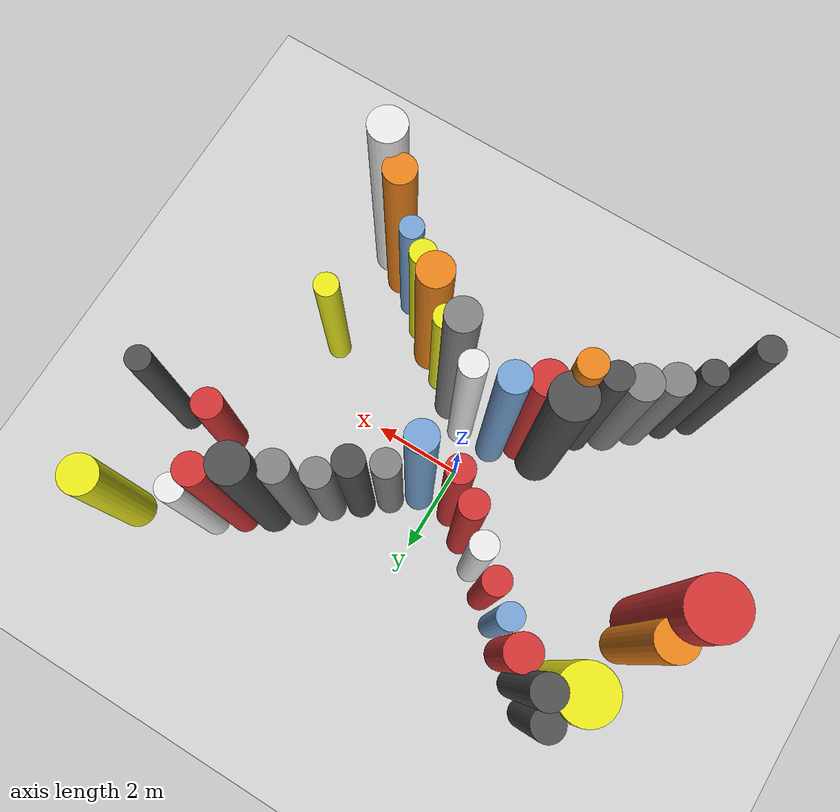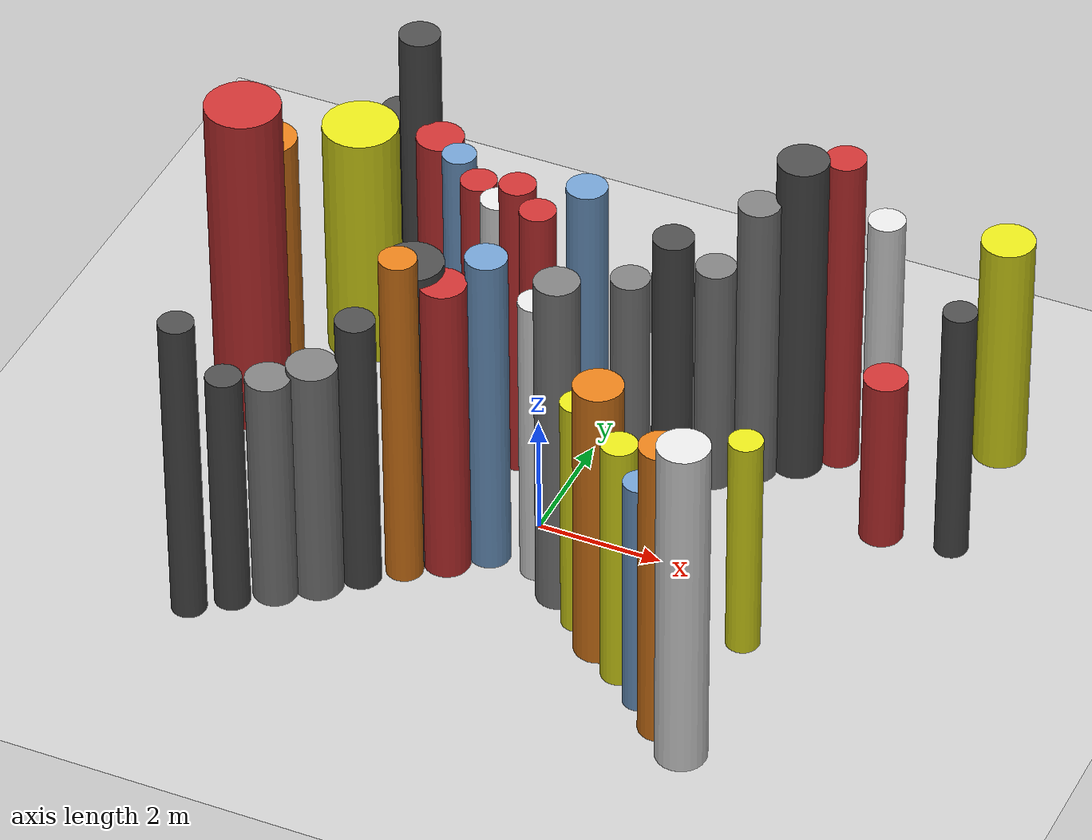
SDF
<?xml version='1.0'?>
<sdf version='1.6'>
  <world name='routeA_rl_v1__dense_recovery__rl_train__bottleneck_corridor__000069'>
    <!-- Sun light -->
    <light name='sun' type='directional'>
      <cast_shadows>1</cast_shadows>
      <pose>0 0 10 0 0 0</pose>
      <diffuse>0.8 0.8 0.8 1</diffuse>
      <specular>0.2 0.2 0.2 1</specular>
      <attenuation>
        <range>1000</range>
        <constant>0.9</constant>
        <linear>0.01</linear>
        <quadratic>0.001</quadratic>
      </attenuation>
      <direction>-0.5 0.1 -0.9</direction>
    </light>

    <!-- Ground plane -->
    <model name='ground_plane'>
      <static>1</static>
      <link name='link'>
        <collision name='collision'>
          <geometry>
            <plane>
              <normal>0 0 1</normal>
              <size>100 100</size>
            </plane>
          </geometry>
          <surface>
            <contact>
              <collide_bitmask>65535</collide_bitmask>
              <ode/>
            </contact>
            <friction>
              <ode>
                <mu>100</mu>
                <mu2>50</mu2>
              </ode>
              <torsional><ode/></torsional>
            </friction>
            <bounce/>
          </surface>
          <max_contacts>10</max_contacts>
        </collision>
        <visual name='visual'>
          <cast_shadows>0</cast_shadows>
          <geometry>
            <plane>
              <normal>0 0 1</normal>
              <size>100 100</size>
            </plane>
          </geometry>
          <material>
            <script>
              <uri>file://media/materials/scripts/gazebo.material</uri>
              <n>Gazebo/Grey</n>
            </script>
          </material>
        </visual>
      </link>
    </model>

    <!-- Environment -->
    <magnetic_field>6e-06 2.3e-05 -4.2e-05</magnetic_field>
    <atmosphere type='adiabatic'/>
    <physics name='default_physics' default='0' type='ode'>
      <gravity>0 0 -9.8</gravity>
      <max_step_size>0.004</max_step_size>
      <real_time_factor>1</real_time_factor>
      <real_time_update_rate>250</real_time_update_rate>
    </physics>
    <scene>
      <ambient>0.4 0.4 0.4 1</ambient>
      <background>0.7 0.7 0.7 1</background>
      <shadows>1</shadows>
    </scene>
    <wind/>
    <spherical_coordinates>
      <surface_model>EARTH_WGS84</surface_model>
      <latitude_deg>0</latitude_deg>
      <longitude_deg>0</longitude_deg>
      <elevation>0</elevation>
      <heading_deg>0</heading_deg>
    </spherical_coordinates>

    <!-- ============ OBSTACLES (40) ============ -->
    <model name='funnel_l_0'>
      <static>1</static>
      <link name='link'>
        <visual name='visual'>
          <geometry>
            <cylinder>
              <radius>0.2718</radius>
              <length>5.4265</length>
            </cylinder>
          </geometry>
          <material>
            <script>
              <n>Gazebo/DarkGrey</n>
              <uri>file://media/materials/scripts/gazebo.material</uri>
            </script>
            <ambient>0.3 0.3 0.3 1</ambient>
          </material>
        </visual>
        <collision name='collision'>
          <geometry>
            <cylinder>
              <radius>0.2718</radius>
              <length>5.4265</length>
            </cylinder>
          </geometry>
          <max_contacts>10</max_contacts>
          <surface>
            <contact><ode/></contact>
            <bounce/>
            <friction>
              <ode><mu>1</mu><mu2>1</mu2></ode>
              <torsional><ode/></torsional>
            </friction>
          </surface>
        </collision>
      </link>
      <pose>-4.0000 -3.8000 2.7132 0 0 0.0000</pose>
    </model>

    <model name='funnel_r_0'>
      <static>1</static>
      <link name='link'>
        <visual name='visual'>
          <geometry>
            <cylinder>
              <radius>0.3320</radius>
              <length>4.0389</length>
            </cylinder>
          </geometry>
          <material>
            <script>
              <n>Gazebo/DarkGrey</n>
              <uri>file://media/materials/scripts/gazebo.material</uri>
            </script>
            <ambient>0.3 0.3 0.3 1</ambient>
          </material>
        </visual>
        <collision name='collision'>
          <geometry>
            <cylinder>
              <radius>0.3320</radius>
              <length>4.0389</length>
            </cylinder>
          </geometry>
          <max_contacts>10</max_contacts>
          <surface>
            <contact><ode/></contact>
            <bounce/>
            <friction>
              <ode><mu>1</mu><mu2>1</mu2></ode>
              <torsional><ode/></torsional>
            </friction>
          </surface>
        </collision>
      </link>
      <pose>-4.0000 3.8000 2.0195 0 0 0.0000</pose>
    </model>

    <model name='funnel_l_1'>
      <static>1</static>
      <link name='link'>
        <visual name='visual'>
          <geometry>
            <cylinder>
              <radius>0.2744</radius>
              <length>4.2937</length>
            </cylinder>
          </geometry>
          <material>
            <script>
              <n>Gazebo/DarkGrey</n>
              <uri>file://media/materials/scripts/gazebo.material</uri>
            </script>
            <ambient>0.3 0.3 0.3 1</ambient>
          </material>
        </visual>
        <collision name='collision'>
          <geometry>
            <cylinder>
              <radius>0.2744</radius>
              <length>4.2937</length>
            </cylinder>
          </geometry>
          <max_contacts>10</max_contacts>
          <surface>
            <contact><ode/></contact>
            <bounce/>
            <friction>
              <ode><mu>1</mu><mu2>1</mu2></ode>
              <torsional><ode/></torsional>
            </friction>
          </surface>
        </collision>
      </link>
      <pose>-3.4857 -3.3857 2.1469 0 0 0.0000</pose>
    </model>

    <model name='funnel_r_1'>
      <static>1</static>
      <link name='link'>
        <visual name='visual'>
          <geometry>
            <cylinder>
              <radius>0.3218</radius>
              <length>5.8921</length>
            </cylinder>
          </geometry>
          <material>
            <script>
              <n>Gazebo/DarkGrey</n>
              <uri>file://media/materials/scripts/gazebo.material</uri>
            </script>
            <ambient>0.3 0.3 0.3 1</ambient>
          </material>
        </visual>
        <collision name='collision'>
          <geometry>
            <cylinder>
              <radius>0.3218</radius>
              <length>5.8921</length>
            </cylinder>
          </geometry>
          <max_contacts>10</max_contacts>
          <surface>
            <contact><ode/></contact>
            <bounce/>
            <friction>
              <ode><mu>1</mu><mu2>1</mu2></ode>
              <torsional><ode/></torsional>
            </friction>
          </surface>
        </collision>
      </link>
      <pose>-3.4857 3.3857 2.9461 0 0 0.0000</pose>
    </model>

    <model name='funnel_l_2'>
      <static>1</static>
      <link name='link'>
        <visual name='visual'>
          <geometry>
            <cylinder>
              <radius>0.3454</radius>
              <length>4.1374</length>
            </cylinder>
          </geometry>
          <material>
            <script>
              <n>Gazebo/Grey</n>
              <uri>file://media/materials/scripts/gazebo.material</uri>
            </script>
            <ambient>0.5 0.5 0.5 1</ambient>
          </material>
        </visual>
        <collision name='collision'>
          <geometry>
            <cylinder>
              <radius>0.3454</radius>
              <length>4.1374</length>
            </cylinder>
          </geometry>
          <max_contacts>10</max_contacts>
          <surface>
            <contact><ode/></contact>
            <bounce/>
            <friction>
              <ode><mu>1</mu><mu2>1</mu2></ode>
              <torsional><ode/></torsional>
            </friction>
          </surface>
        </collision>
      </link>
      <pose>-2.9714 -2.9714 2.0687 0 0 0.0000</pose>
    </model>

    <model name='funnel_r_2'>
      <static>1</static>
      <link name='link'>
        <visual name='visual'>
          <geometry>
            <cylinder>
              <radius>0.3732</radius>
              <length>4.4045</length>
            </cylinder>
          </geometry>
          <material>
            <script>
              <n>Gazebo/Red</n>
              <uri>file://media/materials/scripts/gazebo.material</uri>
            </script>
            <ambient>0.8 0.2 0.2 1</ambient>
          </material>
        </visual>
        <collision name='collision'>
          <geometry>
            <cylinder>
              <radius>0.3732</radius>
              <length>4.4045</length>
            </cylinder>
          </geometry>
          <max_contacts>10</max_contacts>
          <surface>
            <contact><ode/></contact>
            <bounce/>
            <friction>
              <ode><mu>1</mu><mu2>1</mu2></ode>
              <torsional><ode/></torsional>
            </friction>
          </surface>
        </collision>
      </link>
      <pose>-2.9714 2.9714 2.2022 0 0 0.0000</pose>
    </model>

    <model name='funnel_l_3'>
      <static>1</static>
      <link name='link'>
        <visual name='visual'>
          <geometry>
            <cylinder>
              <radius>0.3858</radius>
              <length>4.2300</length>
            </cylinder>
          </geometry>
          <material>
            <script>
              <n>Gazebo/Grey</n>
              <uri>file://media/materials/scripts/gazebo.material</uri>
            </script>
            <ambient>0.5 0.5 0.5 1</ambient>
          </material>
        </visual>
        <collision name='collision'>
          <geometry>
            <cylinder>
              <radius>0.3858</radius>
              <length>4.2300</length>
            </cylinder>
          </geometry>
          <max_contacts>10</max_contacts>
          <surface>
            <contact><ode/></contact>
            <bounce/>
            <friction>
              <ode><mu>1</mu><mu2>1</mu2></ode>
              <torsional><ode/></torsional>
            </friction>
          </surface>
        </collision>
      </link>
      <pose>-2.4571 -2.5571 2.1150 0 0 0.0000</pose>
    </model>

    <model name='funnel_r_3'>
      <static>1</static>
      <link name='link'>
        <visual name='visual'>
          <geometry>
            <cylinder>
              <radius>0.2668</radius>
              <length>4.5236</length>
            </cylinder>
          </geometry>
          <material>
            <script>
              <n>Gazebo/Blue</n>
              <uri>file://media/materials/scripts/gazebo.material</uri>
            </script>
            <ambient>0.447 0.624 0.812 1</ambient>
          </material>
        </visual>
        <collision name='collision'>
          <geometry>
            <cylinder>
              <radius>0.2668</radius>
              <length>4.5236</length>
            </cylinder>
          </geometry>
          <max_contacts>10</max_contacts>
          <surface>
            <contact><ode/></contact>
            <bounce/>
            <friction>
              <ode><mu>1</mu><mu2>1</mu2></ode>
              <torsional><ode/></torsional>
            </friction>
          </surface>
        </collision>
      </link>
      <pose>-2.4571 2.5571 2.2618 0 0 0.0000</pose>
    </model>

    <model name='funnel_l_4'>
      <static>1</static>
      <link name='link'>
        <visual name='visual'>
          <geometry>
            <cylinder>
              <radius>0.3014</radius>
              <length>4.9297</length>
            </cylinder>
          </geometry>
          <material>
            <script>
              <n>Gazebo/DarkGrey</n>
              <uri>file://media/materials/scripts/gazebo.material</uri>
            </script>
            <ambient>0.3 0.3 0.3 1</ambient>
          </material>
        </visual>
        <collision name='collision'>
          <geometry>
            <cylinder>
              <radius>0.3014</radius>
              <length>4.9297</length>
            </cylinder>
          </geometry>
          <max_contacts>10</max_contacts>
          <surface>
            <contact><ode/></contact>
            <bounce/>
            <friction>
              <ode><mu>1</mu><mu2>1</mu2></ode>
              <torsional><ode/></torsional>
            </friction>
          </surface>
        </collision>
      </link>
      <pose>-1.9429 -2.1429 2.4649 0 0 0.0000</pose>
    </model>

    <model name='funnel_r_4'>
      <static>1</static>
      <link name='link'>
        <visual name='visual'>
          <geometry>
            <cylinder>
              <radius>0.2849</radius>
              <length>4.4782</length>
            </cylinder>
          </geometry>
          <material>
            <script>
              <n>Gazebo/Red</n>
              <uri>file://media/materials/scripts/gazebo.material</uri>
            </script>
            <ambient>0.8 0.2 0.2 1</ambient>
          </material>
        </visual>
        <collision name='collision'>
          <geometry>
            <cylinder>
              <radius>0.2849</radius>
              <length>4.4782</length>
            </cylinder>
          </geometry>
          <max_contacts>10</max_contacts>
          <surface>
            <contact><ode/></contact>
            <bounce/>
            <friction>
              <ode><mu>1</mu><mu2>1</mu2></ode>
              <torsional><ode/></torsional>
            </friction>
          </surface>
        </collision>
      </link>
      <pose>-1.9429 2.1429 2.2391 0 0 0.0000</pose>
    </model>

    <model name='funnel_l_5'>
      <static>1</static>
      <link name='link'>
        <visual name='visual'>
          <geometry>
            <cylinder>
              <radius>0.2882</radius>
              <length>5.9430</length>
            </cylinder>
          </geometry>
          <material>
            <script>
              <n>Gazebo/Orange</n>
              <uri>file://media/materials/scripts/gazebo.material</uri>
            </script>
            <ambient>0.9 0.5 0.1 1</ambient>
          </material>
        </visual>
        <collision name='collision'>
          <geometry>
            <cylinder>
              <radius>0.2882</radius>
              <length>5.9430</length>
            </cylinder>
          </geometry>
          <max_contacts>10</max_contacts>
          <surface>
            <contact><ode/></contact>
            <bounce/>
            <friction>
              <ode><mu>1</mu><mu2>1</mu2></ode>
              <torsional><ode/></torsional>
            </friction>
          </surface>
        </collision>
      </link>
      <pose>-1.4286 -1.7286 2.9715 0 0 0.0000</pose>
    </model>

    <model name='funnel_r_5'>
      <static>1</static>
      <link name='link'>
        <visual name='visual'>
          <geometry>
            <cylinder>
              <radius>0.2801</radius>
              <length>4.5776</length>
            </cylinder>
          </geometry>
          <material>
            <script>
              <n>Gazebo/White</n>
              <uri>file://media/materials/scripts/gazebo.material</uri>
            </script>
            <ambient>0.9 0.9 0.9 1</ambient>
          </material>
        </visual>
        <collision name='collision'>
          <geometry>
            <cylinder>
              <radius>0.2801</radius>
              <length>4.5776</length>
            </cylinder>
          </geometry>
          <max_contacts>10</max_contacts>
          <surface>
            <contact><ode/></contact>
            <bounce/>
            <friction>
              <ode><mu>1</mu><mu2>1</mu2></ode>
              <torsional><ode/></torsional>
            </friction>
          </surface>
        </collision>
      </link>
      <pose>-1.4286 1.7286 2.2888 0 0 0.0000</pose>
    </model>

    <model name='funnel_l_6'>
      <static>1</static>
      <link name='link'>
        <visual name='visual'>
          <geometry>
            <cylinder>
              <radius>0.3624</radius>
              <length>5.3469</length>
            </cylinder>
          </geometry>
          <material>
            <script>
              <n>Gazebo/Red</n>
              <uri>file://media/materials/scripts/gazebo.material</uri>
            </script>
            <ambient>0.8 0.2 0.2 1</ambient>
          </material>
        </visual>
        <collision name='collision'>
          <geometry>
            <cylinder>
              <radius>0.3624</radius>
              <length>5.3469</length>
            </cylinder>
          </geometry>
          <max_contacts>10</max_contacts>
          <surface>
            <contact><ode/></contact>
            <bounce/>
            <friction>
              <ode><mu>1</mu><mu2>1</mu2></ode>
              <torsional><ode/></torsional>
            </friction>
          </surface>
        </collision>
      </link>
      <pose>-0.9143 -1.3143 2.6734 0 0 0.0000</pose>
    </model>

    <model name='funnel_r_6'>
      <static>1</static>
      <link name='link'>
        <visual name='visual'>
          <geometry>
            <cylinder>
              <radius>0.2842</radius>
              <length>5.3134</length>
            </cylinder>
          </geometry>
          <material>
            <script>
              <n>Gazebo/Red</n>
              <uri>file://media/materials/scripts/gazebo.material</uri>
            </script>
            <ambient>0.8 0.2 0.2 1</ambient>
          </material>
        </visual>
        <collision name='collision'>
          <geometry>
            <cylinder>
              <radius>0.2842</radius>
              <length>5.3134</length>
            </cylinder>
          </geometry>
          <max_contacts>10</max_contacts>
          <surface>
            <contact><ode/></contact>
            <bounce/>
            <friction>
              <ode><mu>1</mu><mu2>1</mu2></ode>
              <torsional><ode/></torsional>
            </friction>
          </surface>
        </collision>
      </link>
      <pose>-0.9143 1.3143 2.6567 0 0 0.0000</pose>
    </model>

    <model name='funnel_l_7'>
      <static>1</static>
      <link name='link'>
        <visual name='visual'>
          <geometry>
            <cylinder>
              <radius>0.3197</radius>
              <length>5.7007</length>
            </cylinder>
          </geometry>
          <material>
            <script>
              <n>Gazebo/Blue</n>
              <uri>file://media/materials/scripts/gazebo.material</uri>
            </script>
            <ambient>0.447 0.624 0.812 1</ambient>
          </material>
        </visual>
        <collision name='collision'>
          <geometry>
            <cylinder>
              <radius>0.3197</radius>
              <length>5.7007</length>
            </cylinder>
          </geometry>
          <max_contacts>10</max_contacts>
          <surface>
            <contact><ode/></contact>
            <bounce/>
            <friction>
              <ode><mu>1</mu><mu2>1</mu2></ode>
              <torsional><ode/></torsional>
            </friction>
          </surface>
        </collision>
      </link>
      <pose>-0.4000 -0.9000 2.8504 0 0 0.0000</pose>
    </model>

    <model name='funnel_r_7'>
      <static>1</static>
      <link name='link'>
        <visual name='visual'>
          <geometry>
            <cylinder>
              <radius>0.2814</radius>
              <length>5.2808</length>
            </cylinder>
          </geometry>
          <material>
            <script>
              <n>Gazebo/Red</n>
              <uri>file://media/materials/scripts/gazebo.material</uri>
            </script>
            <ambient>0.8 0.2 0.2 1</ambient>
          </material>
        </visual>
        <collision name='collision'>
          <geometry>
            <cylinder>
              <radius>0.2814</radius>
              <length>5.2808</length>
            </cylinder>
          </geometry>
          <max_contacts>10</max_contacts>
          <surface>
            <contact><ode/></contact>
            <bounce/>
            <friction>
              <ode><mu>1</mu><mu2>1</mu2></ode>
              <torsional><ode/></torsional>
            </friction>
          </surface>
        </collision>
      </link>
      <pose>-0.4000 0.9000 2.6404 0 0 0.0000</pose>
    </model>

    <model name='funnel_out_l_0'>
      <static>1</static>
      <link name='link'>
        <visual name='visual'>
          <geometry>
            <cylinder>
              <radius>0.2830</radius>
              <length>5.1470</length>
            </cylinder>
          </geometry>
          <material>
            <script>
              <n>Gazebo/White</n>
              <uri>file://media/materials/scripts/gazebo.material</uri>
            </script>
            <ambient>0.9 0.9 0.9 1</ambient>
          </material>
        </visual>
        <collision name='collision'>
          <geometry>
            <cylinder>
              <radius>0.2830</radius>
              <length>5.1470</length>
            </cylinder>
          </geometry>
          <max_contacts>10</max_contacts>
          <surface>
            <contact><ode/></contact>
            <bounce/>
            <friction>
              <ode><mu>1</mu><mu2>1</mu2></ode>
              <torsional><ode/></torsional>
            </friction>
          </surface>
        </collision>
      </link>
      <pose>0.4000 -0.9000 2.5735 0 0 0.0000</pose>
    </model>

    <model name='funnel_out_r_0'>
      <static>1</static>
      <link name='link'>
        <visual name='visual'>
          <geometry>
            <cylinder>
              <radius>0.3134</radius>
              <length>5.9748</length>
            </cylinder>
          </geometry>
          <material>
            <script>
              <n>Gazebo/Blue</n>
              <uri>file://media/materials/scripts/gazebo.material</uri>
            </script>
            <ambient>0.447 0.624 0.812 1</ambient>
          </material>
        </visual>
        <collision name='collision'>
          <geometry>
            <cylinder>
              <radius>0.3134</radius>
              <length>5.9748</length>
            </cylinder>
          </geometry>
          <max_contacts>10</max_contacts>
          <surface>
            <contact><ode/></contact>
            <bounce/>
            <friction>
              <ode><mu>1</mu><mu2>1</mu2></ode>
              <torsional><ode/></torsional>
            </friction>
          </surface>
        </collision>
      </link>
      <pose>0.4000 0.9000 2.9874 0 0 0.0000</pose>
    </model>

    <model name='funnel_out_l_1'>
      <static>1</static>
      <link name='link'>
        <visual name='visual'>
          <geometry>
            <cylinder>
              <radius>0.3453</radius>
              <length>5.9753</length>
            </cylinder>
          </geometry>
          <material>
            <script>
              <n>Gazebo/Grey</n>
              <uri>file://media/materials/scripts/gazebo.material</uri>
            </script>
            <ambient>0.5 0.5 0.5 1</ambient>
          </material>
        </visual>
        <collision name='collision'>
          <geometry>
            <cylinder>
              <radius>0.3453</radius>
              <length>5.9753</length>
            </cylinder>
          </geometry>
          <max_contacts>10</max_contacts>
          <surface>
            <contact><ode/></contact>
            <bounce/>
            <friction>
              <ode><mu>1</mu><mu2>1</mu2></ode>
              <torsional><ode/></torsional>
            </friction>
          </surface>
        </collision>
      </link>
      <pose>0.9143 -1.3143 2.9877 0 0 0.0000</pose>
    </model>

    <model name='funnel_out_r_1'>
      <static>1</static>
      <link name='link'>
        <visual name='visual'>
          <geometry>
            <cylinder>
              <radius>0.3038</radius>
              <length>4.1363</length>
            </cylinder>
          </geometry>
          <material>
            <script>
              <n>Gazebo/Grey</n>
              <uri>file://media/materials/scripts/gazebo.material</uri>
            </script>
            <ambient>0.5 0.5 0.5 1</ambient>
          </material>
        </visual>
        <collision name='collision'>
          <geometry>
            <cylinder>
              <radius>0.3038</radius>
              <length>4.1363</length>
            </cylinder>
          </geometry>
          <max_contacts>10</max_contacts>
          <surface>
            <contact><ode/></contact>
            <bounce/>
            <friction>
              <ode><mu>1</mu><mu2>1</mu2></ode>
              <torsional><ode/></torsional>
            </friction>
          </surface>
        </collision>
      </link>
      <pose>0.9143 1.3143 2.0681 0 0 0.0000</pose>
    </model>

    <model name='funnel_out_l_2'>
      <static>1</static>
      <link name='link'>
        <visual name='visual'>
          <geometry>
            <cylinder>
              <radius>0.2678</radius>
              <length>4.2107</length>
            </cylinder>
          </geometry>
          <material>
            <script>
              <n>Gazebo/Yellow</n>
              <uri>file://media/materials/scripts/gazebo.material</uri>
            </script>
            <ambient>0.9 0.9 0.1 1</ambient>
          </material>
        </visual>
        <collision name='collision'>
          <geometry>
            <cylinder>
              <radius>0.2678</radius>
              <length>4.2107</length>
            </cylinder>
          </geometry>
          <max_contacts>10</max_contacts>
          <surface>
            <contact><ode/></contact>
            <bounce/>
            <friction>
              <ode><mu>1</mu><mu2>1</mu2></ode>
              <torsional><ode/></torsional>
            </friction>
          </surface>
        </collision>
      </link>
      <pose>1.4286 -1.7286 2.1053 0 0 0.0000</pose>
    </model>

    <model name='funnel_out_r_2'>
      <static>1</static>
      <link name='link'>
        <visual name='visual'>
          <geometry>
            <cylinder>
              <radius>0.3181</radius>
              <length>4.7620</length>
            </cylinder>
          </geometry>
          <material>
            <script>
              <n>Gazebo/DarkGrey</n>
              <uri>file://media/materials/scripts/gazebo.material</uri>
            </script>
            <ambient>0.3 0.3 0.3 1</ambient>
          </material>
        </visual>
        <collision name='collision'>
          <geometry>
            <cylinder>
              <radius>0.3181</radius>
              <length>4.7620</length>
            </cylinder>
          </geometry>
          <max_contacts>10</max_contacts>
          <surface>
            <contact><ode/></contact>
            <bounce/>
            <friction>
              <ode><mu>1</mu><mu2>1</mu2></ode>
              <torsional><ode/></torsional>
            </friction>
          </surface>
        </collision>
      </link>
      <pose>1.4286 1.7286 2.3810 0 0 0.0000</pose>
    </model>

    <model name='funnel_out_l_3'>
      <static>1</static>
      <link name='link'>
        <visual name='visual'>
          <geometry>
            <cylinder>
              <radius>0.3813</radius>
              <length>5.0062</length>
            </cylinder>
          </geometry>
          <material>
            <script>
              <n>Gazebo/Orange</n>
              <uri>file://media/materials/scripts/gazebo.material</uri>
            </script>
            <ambient>0.9 0.5 0.1 1</ambient>
          </material>
        </visual>
        <collision name='collision'>
          <geometry>
            <cylinder>
              <radius>0.3813</radius>
              <length>5.0062</length>
            </cylinder>
          </geometry>
          <max_contacts>10</max_contacts>
          <surface>
            <contact><ode/></contact>
            <bounce/>
            <friction>
              <ode><mu>1</mu><mu2>1</mu2></ode>
              <torsional><ode/></torsional>
            </friction>
          </surface>
        </collision>
      </link>
      <pose>1.9429 -2.1429 2.5031 0 0 0.0000</pose>
    </model>

    <model name='funnel_out_r_3'>
      <static>1</static>
      <link name='link'>
        <visual name='visual'>
          <geometry>
            <cylinder>
              <radius>0.3124</radius>
              <length>4.0871</length>
            </cylinder>
          </geometry>
          <material>
            <script>
              <n>Gazebo/Grey</n>
              <uri>file://media/materials/scripts/gazebo.material</uri>
            </script>
            <ambient>0.5 0.5 0.5 1</ambient>
          </material>
        </visual>
        <collision name='collision'>
          <geometry>
            <cylinder>
              <radius>0.3124</radius>
              <length>4.0871</length>
            </cylinder>
          </geometry>
          <max_contacts>10</max_contacts>
          <surface>
            <contact><ode/></contact>
            <bounce/>
            <friction>
              <ode><mu>1</mu><mu2>1</mu2></ode>
              <torsional><ode/></torsional>
            </friction>
          </surface>
        </collision>
      </link>
      <pose>1.9429 2.1429 2.0436 0 0 0.0000</pose>
    </model>

    <model name='funnel_out_l_4'>
      <static>1</static>
      <link name='link'>
        <visual name='visual'>
          <geometry>
            <cylinder>
              <radius>0.2792</radius>
              <length>4.3964</length>
            </cylinder>
          </geometry>
          <material>
            <script>
              <n>Gazebo/Yellow</n>
              <uri>file://media/materials/scripts/gazebo.material</uri>
            </script>
            <ambient>0.9 0.9 0.1 1</ambient>
          </material>
        </visual>
        <collision name='collision'>
          <geometry>
            <cylinder>
              <radius>0.2792</radius>
              <length>4.3964</length>
            </cylinder>
          </geometry>
          <max_contacts>10</max_contacts>
          <surface>
            <contact><ode/></contact>
            <bounce/>
            <friction>
              <ode><mu>1</mu><mu2>1</mu2></ode>
              <torsional><ode/></torsional>
            </friction>
          </surface>
        </collision>
      </link>
      <pose>2.4571 -2.5571 2.1982 0 0 0.0000</pose>
    </model>

    <model name='funnel_out_r_4'>
      <static>1</static>
      <link name='link'>
        <visual name='visual'>
          <geometry>
            <cylinder>
              <radius>0.3271</radius>
              <length>5.1274</length>
            </cylinder>
          </geometry>
          <material>
            <script>
              <n>Gazebo/Grey</n>
              <uri>file://media/materials/scripts/gazebo.material</uri>
            </script>
            <ambient>0.5 0.5 0.5 1</ambient>
          </material>
        </visual>
        <collision name='collision'>
          <geometry>
            <cylinder>
              <radius>0.3271</radius>
              <length>5.1274</length>
            </cylinder>
          </geometry>
          <max_contacts>10</max_contacts>
          <surface>
            <contact><ode/></contact>
            <bounce/>
            <friction>
              <ode><mu>1</mu><mu2>1</mu2></ode>
              <torsional><ode/></torsional>
            </friction>
          </surface>
        </collision>
      </link>
      <pose>2.4571 2.5571 2.5637 0 0 0.0000</pose>
    </model>

    <model name='funnel_out_l_5'>
      <static>1</static>
      <link name='link'>
        <visual name='visual'>
          <geometry>
            <cylinder>
              <radius>0.2595</radius>
              <length>4.1876</length>
            </cylinder>
          </geometry>
          <material>
            <script>
              <n>Gazebo/Blue</n>
              <uri>file://media/materials/scripts/gazebo.material</uri>
            </script>
            <ambient>0.447 0.624 0.812 1</ambient>
          </material>
        </visual>
        <collision name='collision'>
          <geometry>
            <cylinder>
              <radius>0.2595</radius>
              <length>4.1876</length>
            </cylinder>
          </geometry>
          <max_contacts>10</max_contacts>
          <surface>
            <contact><ode/></contact>
            <bounce/>
            <friction>
              <ode><mu>1</mu><mu2>1</mu2></ode>
              <torsional><ode/></torsional>
            </friction>
          </surface>
        </collision>
      </link>
      <pose>2.9714 -2.9714 2.0938 0 0 0.0000</pose>
    </model>

    <model name='funnel_out_r_5'>
      <static>1</static>
      <link name='link'>
        <visual name='visual'>
          <geometry>
            <cylinder>
              <radius>0.3959</radius>
              <length>5.8112</length>
            </cylinder>
          </geometry>
          <material>
            <script>
              <n>Gazebo/DarkGrey</n>
              <uri>file://media/materials/scripts/gazebo.material</uri>
            </script>
            <ambient>0.3 0.3 0.3 1</ambient>
          </material>
        </visual>
        <collision name='collision'>
          <geometry>
            <cylinder>
              <radius>0.3959</radius>
              <length>5.8112</length>
            </cylinder>
          </geometry>
          <max_contacts>10</max_contacts>
          <surface>
            <contact><ode/></contact>
            <bounce/>
            <friction>
              <ode><mu>1</mu><mu2>1</mu2></ode>
              <torsional><ode/></torsional>
            </friction>
          </surface>
        </collision>
      </link>
      <pose>2.9714 2.9714 2.9056 0 0 0.0000</pose>
    </model>

    <model name='funnel_out_l_6'>
      <static>1</static>
      <link name='link'>
        <visual name='visual'>
          <geometry>
            <cylinder>
              <radius>0.3412</radius>
              <length>5.3457</length>
            </cylinder>
          </geometry>
          <material>
            <script>
              <n>Gazebo/Orange</n>
              <uri>file://media/materials/scripts/gazebo.material</uri>
            </script>
            <ambient>0.9 0.5 0.1 1</ambient>
          </material>
        </visual>
        <collision name='collision'>
          <geometry>
            <cylinder>
              <radius>0.3412</radius>
              <length>5.3457</length>
            </cylinder>
          </geometry>
          <max_contacts>10</max_contacts>
          <surface>
            <contact><ode/></contact>
            <bounce/>
            <friction>
              <ode><mu>1</mu><mu2>1</mu2></ode>
              <torsional><ode/></torsional>
            </friction>
          </surface>
        </collision>
      </link>
      <pose>3.4857 -3.3857 2.6729 0 0 0.0000</pose>
    </model>

    <model name='funnel_out_r_6'>
      <static>1</static>
      <link name='link'>
        <visual name='visual'>
          <geometry>
            <cylinder>
              <radius>0.3119</radius>
              <length>5.7192</length>
            </cylinder>
          </geometry>
          <material>
            <script>
              <n>Gazebo/Red</n>
              <uri>file://media/materials/scripts/gazebo.material</uri>
            </script>
            <ambient>0.8 0.2 0.2 1</ambient>
          </material>
        </visual>
        <collision name='collision'>
          <geometry>
            <cylinder>
              <radius>0.3119</radius>
              <length>5.7192</length>
            </cylinder>
          </geometry>
          <max_contacts>10</max_contacts>
          <surface>
            <contact><ode/></contact>
            <bounce/>
            <friction>
              <ode><mu>1</mu><mu2>1</mu2></ode>
              <torsional><ode/></torsional>
            </friction>
          </surface>
        </collision>
      </link>
      <pose>3.4857 3.3857 2.8596 0 0 0.0000</pose>
    </model>

    <model name='funnel_out_l_7'>
      <static>1</static>
      <link name='link'>
        <visual name='visual'>
          <geometry>
            <cylinder>
              <radius>0.3959</radius>
              <length>5.8313</length>
            </cylinder>
          </geometry>
          <material>
            <script>
              <n>Gazebo/White</n>
              <uri>file://media/materials/scripts/gazebo.material</uri>
            </script>
            <ambient>0.9 0.9 0.9 1</ambient>
          </material>
        </visual>
        <collision name='collision'>
          <geometry>
            <cylinder>
              <radius>0.3959</radius>
              <length>5.8313</length>
            </cylinder>
          </geometry>
          <max_contacts>10</max_contacts>
          <surface>
            <contact><ode/></contact>
            <bounce/>
            <friction>
              <ode><mu>1</mu><mu2>1</mu2></ode>
              <torsional><ode/></torsional>
            </friction>
          </surface>
        </collision>
      </link>
      <pose>4.0000 -3.8000 2.9157 0 0 0.0000</pose>
    </model>

    <model name='funnel_out_r_7'>
      <static>1</static>
      <link name='link'>
        <visual name='visual'>
          <geometry>
            <cylinder>
              <radius>0.2871</radius>
              <length>4.4286</length>
            </cylinder>
          </geometry>
          <material>
            <script>
              <n>Gazebo/White</n>
              <uri>file://media/materials/scripts/gazebo.material</uri>
            </script>
            <ambient>0.9 0.9 0.9 1</ambient>
          </material>
        </visual>
        <collision name='collision'>
          <geometry>
            <cylinder>
              <radius>0.2871</radius>
              <length>4.4286</length>
            </cylinder>
          </geometry>
          <max_contacts>10</max_contacts>
          <surface>
            <contact><ode/></contact>
            <bounce/>
            <friction>
              <ode><mu>1</mu><mu2>1</mu2></ode>
              <torsional><ode/></torsional>
            </friction>
          </surface>
        </collision>
      </link>
      <pose>4.0000 3.8000 2.2143 0 0 0.0000</pose>
    </model>

    <model name='bn_scatter_0'>
      <static>1</static>
      <link name='link'>
        <visual name='visual'>
          <geometry>
            <cylinder>
              <radius>0.5957</radius>
              <length>4.2086</length>
            </cylinder>
          </geometry>
          <material>
            <script>
              <n>Gazebo/Yellow</n>
              <uri>file://media/materials/scripts/gazebo.material</uri>
            </script>
            <ambient>0.9 0.9 0.1 1</ambient>
          </material>
        </visual>
        <collision name='collision'>
          <geometry>
            <cylinder>
              <radius>0.5957</radius>
              <length>4.2086</length>
            </cylinder>
          </geometry>
          <max_contacts>10</max_contacts>
          <surface>
            <contact><ode/></contact>
            <bounce/>
            <friction>
              <ode><mu>1</mu><mu2>1</mu2></ode>
              <torsional><ode/></torsional>
            </friction>
          </surface>
        </collision>
      </link>
      <pose>-4.3177 2.9775 2.1043 0 0 0.0000</pose>
    </model>

    <model name='bn_scatter_1'>
      <static>1</static>
      <link name='link'>
        <visual name='visual'>
          <geometry>
            <cylinder>
              <radius>0.3400</radius>
              <length>3.0262</length>
            </cylinder>
          </geometry>
          <material>
            <script>
              <n>Gazebo/Red</n>
              <uri>file://media/materials/scripts/gazebo.material</uri>
            </script>
            <ambient>0.8 0.2 0.2 1</ambient>
          </material>
        </visual>
        <collision name='collision'>
          <geometry>
            <cylinder>
              <radius>0.3400</radius>
              <length>3.0262</length>
            </cylinder>
          </geometry>
          <max_contacts>10</max_contacts>
          <surface>
            <contact><ode/></contact>
            <bounce/>
            <friction>
              <ode><mu>1</mu><mu2>1</mu2></ode>
              <torsional><ode/></torsional>
            </friction>
          </surface>
        </collision>
      </link>
      <pose>4.7731 1.9654 1.5131 0 0 0.0000</pose>
    </model>

    <model name='bn_scatter_2'>
      <static>1</static>
      <link name='link'>
        <visual name='visual'>
          <geometry>
            <cylinder>
              <radius>0.2633</radius>
              <length>3.8802</length>
            </cylinder>
          </geometry>
          <material>
            <script>
              <n>Gazebo/Yellow</n>
              <uri>file://media/materials/scripts/gazebo.material</uri>
            </script>
            <ambient>0.9 0.9 0.1 1</ambient>
          </material>
        </visual>
        <collision name='collision'>
          <geometry>
            <cylinder>
              <radius>0.2633</radius>
              <length>3.8802</length>
            </cylinder>
          </geometry>
          <max_contacts>10</max_contacts>
          <surface>
            <contact><ode/></contact>
            <bounce/>
            <friction>
              <ode><mu>1</mu><mu2>1</mu2></ode>
              <torsional><ode/></torsional>
            </friction>
          </surface>
        </collision>
      </link>
      <pose>3.8495 -1.1701 1.9401 0 0 0.0000</pose>
    </model>

    <model name='bn_scatter_3'>
      <static>1</static>
      <link name='link'>
        <visual name='visual'>
          <geometry>
            <cylinder>
              <radius>0.4218</radius>
              <length>4.8081</length>
            </cylinder>
          </geometry>
          <material>
            <script>
              <n>Gazebo/Orange</n>
              <uri>file://media/materials/scripts/gazebo.material</uri>
            </script>
            <ambient>0.9 0.5 0.1 1</ambient>
          </material>
        </visual>
        <collision name='collision'>
          <geometry>
            <cylinder>
              <radius>0.4218</radius>
              <length>4.8081</length>
            </cylinder>
          </geometry>
          <max_contacts>10</max_contacts>
          <surface>
            <contact><ode/></contact>
            <bounce/>
            <friction>
              <ode><mu>1</mu><mu2>1</mu2></ode>
              <torsional><ode/></torsional>
            </friction>
          </surface>
        </collision>
      </link>
      <pose>-5.0795 1.4324 2.4041 0 0 0.0000</pose>
    </model>

    <model name='bn_scatter_4'>
      <static>1</static>
      <link name='link'>
        <visual name='visual'>
          <geometry>
            <cylinder>
              <radius>0.4148</radius>
              <length>4.0954</length>
            </cylinder>
          </geometry>
          <material>
            <script>
              <n>Gazebo/Yellow</n>
              <uri>file://media/materials/scripts/gazebo.material</uri>
            </script>
            <ambient>0.9 0.9 0.1 1</ambient>
          </material>
        </visual>
        <collision name='collision'>
          <geometry>
            <cylinder>
              <radius>0.4148</radius>
              <length>4.0954</length>
            </cylinder>
          </geometry>
          <max_contacts>10</max_contacts>
          <surface>
            <contact><ode/></contact>
            <bounce/>
            <friction>
              <ode><mu>1</mu><mu2>1</mu2></ode>
              <torsional><ode/></torsional>
            </friction>
          </surface>
        </collision>
      </link>
      <pose>5.6920 4.4781 2.0477 0 0 0.0000</pose>
    </model>

    <model name='bn_scatter_5'>
      <static>1</static>
      <link name='link'>
        <visual name='visual'>
          <geometry>
            <cylinder>
              <radius>0.2612</radius>
              <length>4.5357</length>
            </cylinder>
          </geometry>
          <material>
            <script>
              <n>Gazebo/DarkGrey</n>
              <uri>file://media/materials/scripts/gazebo.material</uri>
            </script>
            <ambient>0.3 0.3 0.3 1</ambient>
          </material>
        </visual>
        <collision name='collision'>
          <geometry>
            <cylinder>
              <radius>0.2612</radius>
              <length>4.5357</length>
            </cylinder>
          </geometry>
          <max_contacts>10</max_contacts>
          <surface>
            <contact><ode/></contact>
            <bounce/>
            <friction>
              <ode><mu>1</mu><mu2>1</mu2></ode>
              <torsional><ode/></torsional>
            </friction>
          </surface>
        </collision>
      </link>
      <pose>5.8605 2.0907 2.2678 0 0 0.0000</pose>
    </model>

    <model name='bn_scatter_6'>
      <static>1</static>
      <link name='link'>
        <visual name='visual'>
          <geometry>
            <cylinder>
              <radius>0.5895</radius>
              <length>5.8172</length>
            </cylinder>
          </geometry>
          <material>
            <script>
              <n>Gazebo/Red</n>
              <uri>file://media/materials/scripts/gazebo.material</uri>
            </script>
            <ambient>0.8 0.2 0.2 1</ambient>
          </material>
        </visual>
        <collision name='collision'>
          <geometry>
            <cylinder>
              <radius>0.5895</radius>
              <length>5.8172</length>
            </cylinder>
          </geometry>
          <max_contacts>10</max_contacts>
          <surface>
            <contact><ode/></contact>
            <bounce/>
            <friction>
              <ode><mu>1</mu><mu2>1</mu2></ode>
              <torsional><ode/></torsional>
            </friction>
          </surface>
        </collision>
      </link>
      <pose>-5.1869 0.7985 2.9086 0 0 0.0000</pose>
    </model>

    <model name='bn_scatter_7'>
      <static>1</static>
      <link name='link'>
        <visual name='visual'>
          <geometry>
            <cylinder>
              <radius>0.4676</radius>
              <length>5.4977</length>
            </cylinder>
          </geometry>
          <material>
            <script>
              <n>Gazebo/DarkGrey</n>
              <uri>file://media/materials/scripts/gazebo.material</uri>
            </script>
            <ambient>0.3 0.3 0.3 1</ambient>
          </material>
        </visual>
        <collision name='collision'>
          <geometry>
            <cylinder>
              <radius>0.4676</radius>
              <length>5.4977</length>
            </cylinder>
          </geometry>
          <max_contacts>10</max_contacts>
          <surface>
            <contact><ode/></contact>
            <bounce/>
            <friction>
              <ode><mu>1</mu><mu2>1</mu2></ode>
              <torsional><ode/></torsional>
            </friction>
          </surface>
        </collision>
      </link>
      <pose>-1.4425 -1.1990 2.7489 0 0 0.0000</pose>
    </model>

    <!-- GUI camera -->
    <gui fullscreen='0'>
      <camera name='user_camera'>
        <pose>-15 0 18 0 0.85 0.15</pose>
        <view_controller>orbit</view_controller>
        <projection_type>perspective</projection_type>
      </camera>
    </gui>
  </world>
</sdf>
